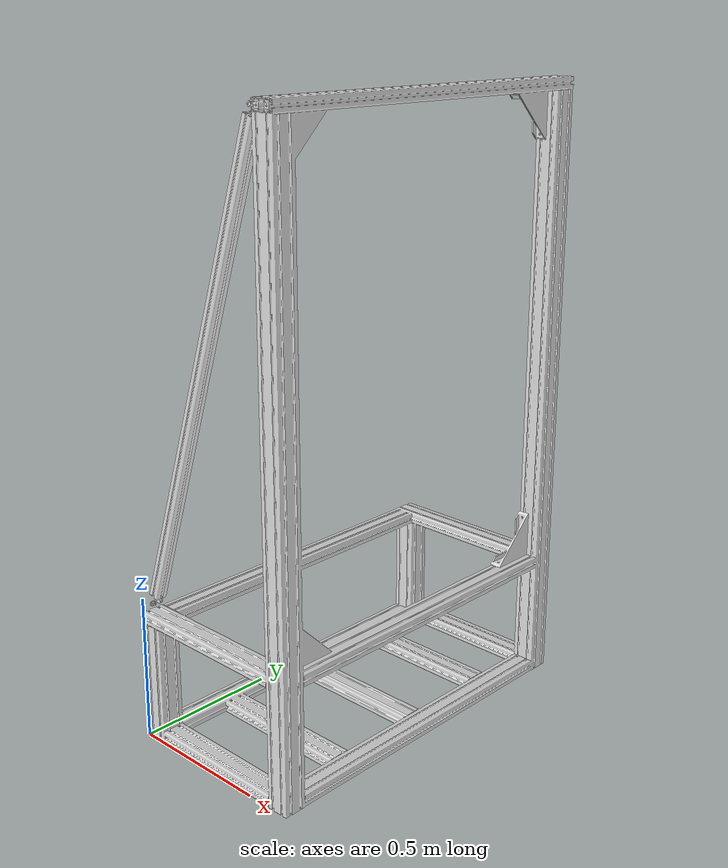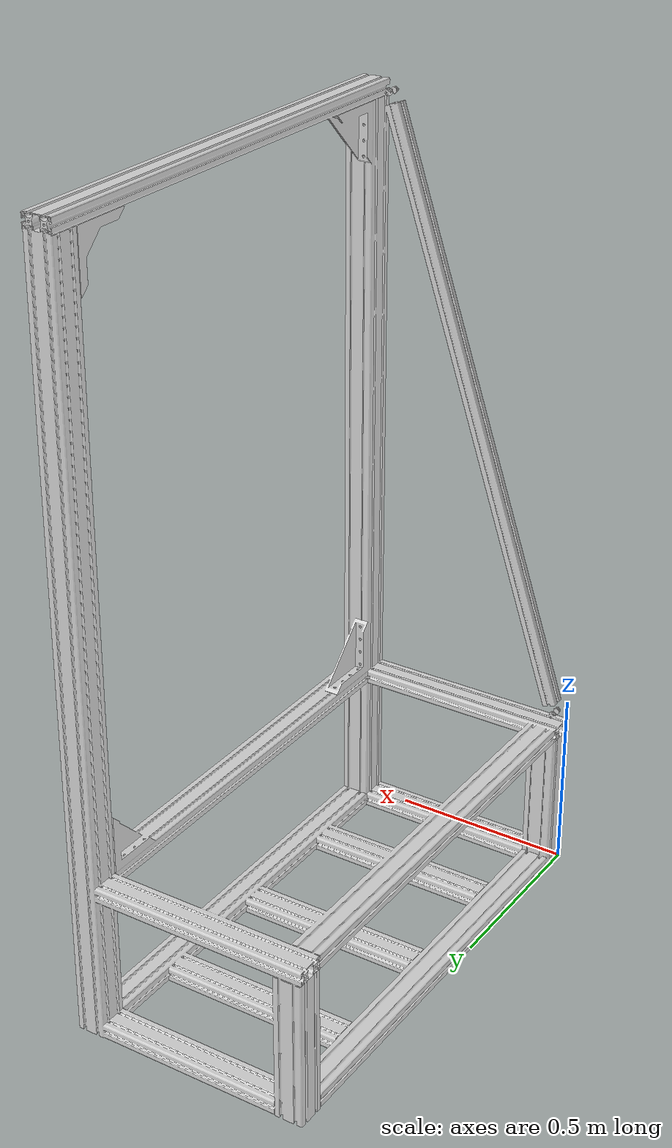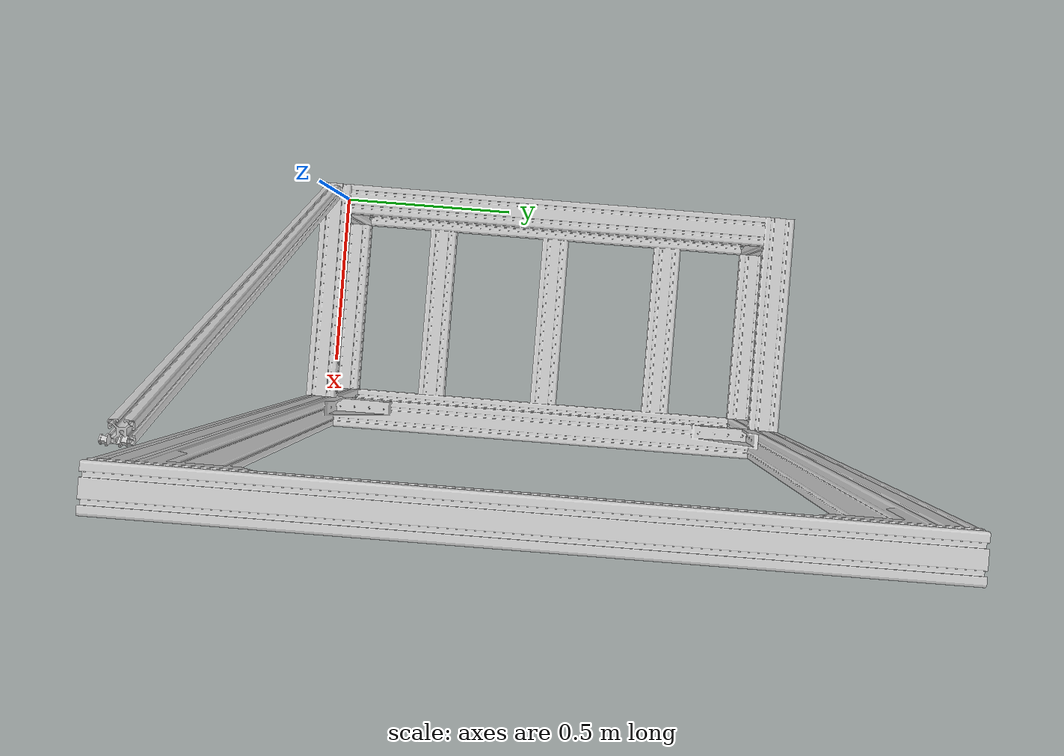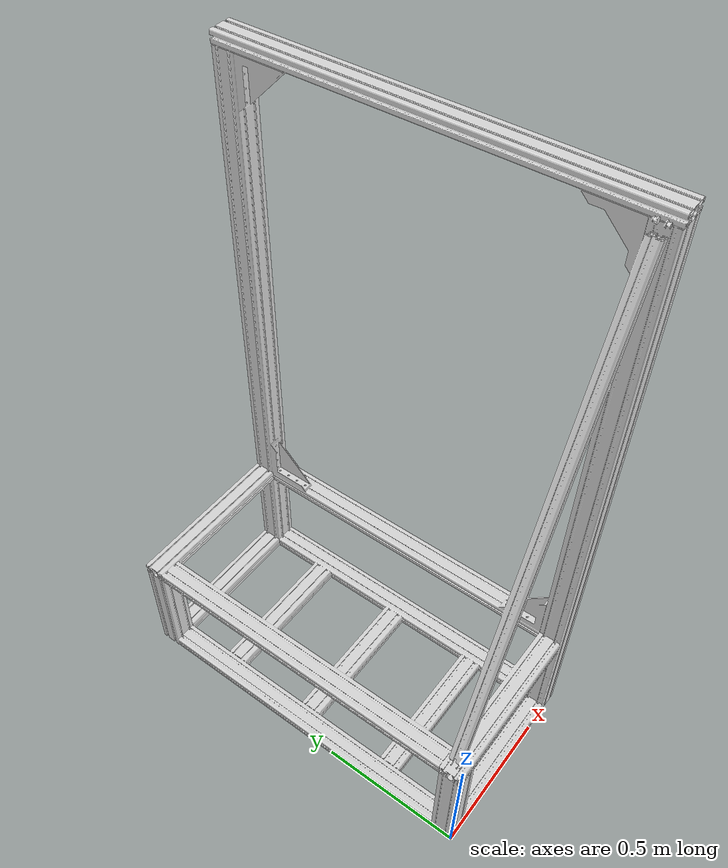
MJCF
<mujoco model="ivr_hatch_frame_no_left">
  <default>
    <default class="visual">
      <geom group="2" type="mesh" contype="0" conaffinity="0"/>
    </default>
    <default class="collision">
      <geom group="3" type="mesh"/>
    </default>
  </default>
  <asset>
    <material name="mtl_ivr_hatch_frame_no_left" specular="0.20000000000000004" shininess="1.0" rgba="0.85098039 0.85098039 0.85098039 1.0"/>
    <mesh file="ivr_hatch_frame_no_left.obj"/>
    <mesh file="ivr_hatch_frame_no_left_collision_0.obj"/>
    <mesh file="ivr_hatch_frame_no_left_collision_1.obj"/>
    <mesh file="ivr_hatch_frame_no_left_collision_2.obj"/>
    <mesh file="ivr_hatch_frame_no_left_collision_3.obj"/>
    <mesh file="ivr_hatch_frame_no_left_collision_4.obj"/>
    <mesh file="ivr_hatch_frame_no_left_collision_5.obj"/>
    <mesh file="ivr_hatch_frame_no_left_collision_6.obj"/>
    <mesh file="ivr_hatch_frame_no_left_collision_7.obj"/>
    <mesh file="ivr_hatch_frame_no_left_collision_8.obj"/>
    <mesh file="ivr_hatch_frame_no_left_collision_9.obj"/>
    <mesh file="ivr_hatch_frame_no_left_collision_10.obj"/>
    <mesh file="ivr_hatch_frame_no_left_collision_11.obj"/>
    <mesh file="ivr_hatch_frame_no_left_collision_12.obj"/>
    <mesh file="ivr_hatch_frame_no_left_collision_13.obj"/>
    <mesh file="ivr_hatch_frame_no_left_collision_14.obj"/>
    <mesh file="ivr_hatch_frame_no_left_collision_15.obj"/>
    <mesh file="ivr_hatch_frame_no_left_collision_16.obj"/>
    <mesh file="ivr_hatch_frame_no_left_collision_17.obj"/>
    <mesh file="ivr_hatch_frame_no_left_collision_18.obj"/>
    <mesh file="ivr_hatch_frame_no_left_collision_19.obj"/>
    <mesh file="ivr_hatch_frame_no_left_collision_20.obj"/>
    <mesh file="ivr_hatch_frame_no_left_collision_21.obj"/>
    <mesh file="ivr_hatch_frame_no_left_collision_22.obj"/>
    <mesh file="ivr_hatch_frame_no_left_collision_23.obj"/>
    <mesh file="ivr_hatch_frame_no_left_collision_24.obj"/>
    <mesh file="ivr_hatch_frame_no_left_collision_25.obj"/>
    <mesh file="ivr_hatch_frame_no_left_collision_26.obj"/>
    <mesh file="ivr_hatch_frame_no_left_collision_27.obj"/>
    <mesh file="ivr_hatch_frame_no_left_collision_28.obj"/>
    <mesh file="ivr_hatch_frame_no_left_collision_29.obj"/>
    <mesh file="ivr_hatch_frame_no_left_collision_30.obj"/>
    <mesh file="ivr_hatch_frame_no_left_collision_31.obj"/>
    <mesh file="ivr_hatch_frame_no_left_collision_32.obj"/>
  </asset>
  <worldbody>
    <body name="ivr_hatch_frame_no_left">
      <geom material="mtl_ivr_hatch_frame_no_left" mesh="ivr_hatch_frame_no_left" class="visual"/>
      <geom mesh="ivr_hatch_frame_no_left_collision_0" rgba="0.2985984672236297 0.45478571148314495 0.3571045040818479 1" class="collision"/>
      <geom mesh="ivr_hatch_frame_no_left_collision_1" rgba="0.23589265865646414 0.15953808114821622 0.1876402952286914 1" class="collision"/>
      <geom mesh="ivr_hatch_frame_no_left_collision_2" rgba="0.7223939367135873 0.6250687149021322 0.8328065337848766 1" class="collision"/>
      <geom mesh="ivr_hatch_frame_no_left_collision_3" rgba="0.49062969606023754 0.34588894754424027 0.2824821157962829 1" class="collision"/>
      <geom mesh="ivr_hatch_frame_no_left_collision_4" rgba="0.528800761028962 0.8823924327883026 0.8759328188262385 1" class="collision"/>
      <geom mesh="ivr_hatch_frame_no_left_collision_5" rgba="0.12908223912607675 0.9035094028611197 0.7768481932161188 1" class="collision"/>
      <geom mesh="ivr_hatch_frame_no_left_collision_6" rgba="0.49404971889352034 0.6976284554884103 0.215808204266285 1" class="collision"/>
      <geom mesh="ivr_hatch_frame_no_left_collision_7" rgba="0.841803568793236 0.947526610431366 0.9757989037624755 1" class="collision"/>
      <geom mesh="ivr_hatch_frame_no_left_collision_8" rgba="0.27402915453279597 0.09785928407651734 0.011889105678477674 1" class="collision"/>
      <geom mesh="ivr_hatch_frame_no_left_collision_9" rgba="0.7137186946301851 0.4239698402048865 0.30220617514997594 1" class="collision"/>
      <geom mesh="ivr_hatch_frame_no_left_collision_10" rgba="0.5261388292066886 0.8653311252774749 0.9226319224497045 1" class="collision"/>
      <geom mesh="ivr_hatch_frame_no_left_collision_11" rgba="0.630763884885577 0.09126614472675465 0.9779455665393918 1" class="collision"/>
      <geom mesh="ivr_hatch_frame_no_left_collision_12" rgba="0.7987669516603207 0.03560852940979087 0.4985390301521554 1" class="collision"/>
      <geom mesh="ivr_hatch_frame_no_left_collision_13" rgba="0.3769932761151745 0.8629708220551956 0.1848104753485741 1" class="collision"/>
      <geom mesh="ivr_hatch_frame_no_left_collision_14" rgba="0.28519335177334526 0.5593084799497491 0.36597201397945134 1" class="collision"/>
      <geom mesh="ivr_hatch_frame_no_left_collision_15" rgba="0.310442708178024 0.4227606157019608 0.04526523585019726 1" class="collision"/>
      <geom mesh="ivr_hatch_frame_no_left_collision_16" rgba="0.505754847565873 0.08375830426990194 0.7277179302204666 1" class="collision"/>
      <geom mesh="ivr_hatch_frame_no_left_collision_17" rgba="0.7139824262131047 0.872572982460718 0.49263798953362115 1" class="collision"/>
      <geom mesh="ivr_hatch_frame_no_left_collision_18" rgba="0.5905063034475768 0.49100329745048765 0.25460728129489973 1" class="collision"/>
      <geom mesh="ivr_hatch_frame_no_left_collision_19" rgba="0.5202453781340555 0.8196053621767888 0.8906791475839421 1" class="collision"/>
      <geom mesh="ivr_hatch_frame_no_left_collision_20" rgba="0.17494755631669678 0.9692928313711 0.14504028257451906 1" class="collision"/>
      <geom mesh="ivr_hatch_frame_no_left_collision_21" rgba="0.43992234295033894 0.9227287751223874 0.7185089846776009 1" class="collision"/>
      <geom mesh="ivr_hatch_frame_no_left_collision_22" rgba="0.18226300373280846 0.6481855464746659 0.29319040785278006 1" class="collision"/>
      <geom mesh="ivr_hatch_frame_no_left_collision_23" rgba="0.31408821726934755 0.676913189239752 0.6911680900274549 1" class="collision"/>
      <geom mesh="ivr_hatch_frame_no_left_collision_24" rgba="0.43427806296737514 0.8184005673274948 0.5143317240884444 1" class="collision"/>
      <geom mesh="ivr_hatch_frame_no_left_collision_25" rgba="0.5030458602496463 0.1337029016862784 0.6885528330767259 1" class="collision"/>
      <geom mesh="ivr_hatch_frame_no_left_collision_26" rgba="0.05794206448133721 0.5708053318625568 0.187177008117288 1" class="collision"/>
      <geom mesh="ivr_hatch_frame_no_left_collision_27" rgba="0.20670505381370818 0.9194317173705224 0.32542081997469596 1" class="collision"/>
      <geom mesh="ivr_hatch_frame_no_left_collision_28" rgba="0.23931292941460003 0.4592469038087882 0.08486968451673826 1" class="collision"/>
      <geom mesh="ivr_hatch_frame_no_left_collision_29" rgba="0.9611528015782769 0.8689507423305374 0.32499858393119707 1" class="collision"/>
      <geom mesh="ivr_hatch_frame_no_left_collision_30" rgba="0.5474156526967463 0.5573100377070077 0.57868797701725 1" class="collision"/>
      <geom mesh="ivr_hatch_frame_no_left_collision_31" rgba="0.453518151898225 0.645110104553251 0.3623402937116027 1" class="collision"/>
      <geom mesh="ivr_hatch_frame_no_left_collision_32" rgba="0.7584293768544388 0.9767179324666629 0.3538029190577391 1" class="collision"/>
    </body>
  </worldbody>
</mujoco>
